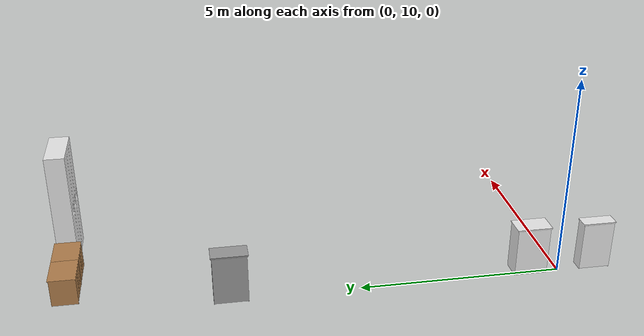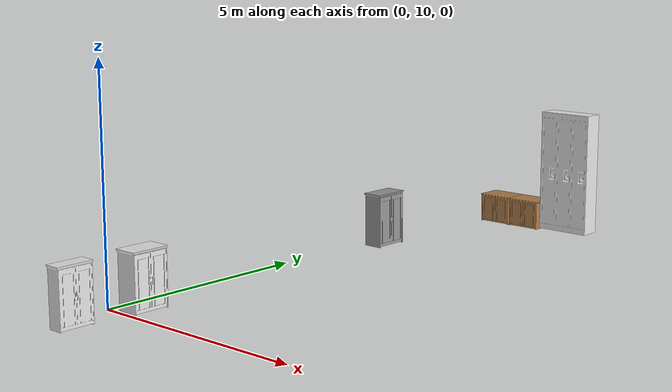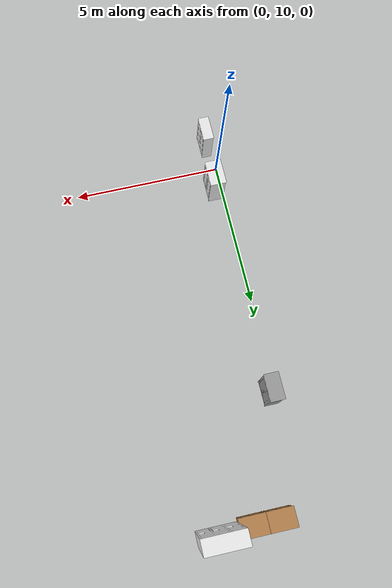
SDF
<?xml version="1.0" ?>
<sdf version="1.5">
  <model name="cupboards">
    <static>true</static>

    <link name="obj2">
      <pose>0.2 9 0 0 0 0</pose>
      <static>true</static>
      <inertial>
          <mass>1.0</mass>
          <inertia>
              <!-- inertias are tricky to compute -->
              <ixx>1</ixx> <!-- for a box: ixx = 0.083 * mass * (y*y + z*z) -->
              <ixy>0</ixy> <!-- for a box: ixy = 0 -->
              <ixz>0</ixz> <!-- for a box: ixz = 0 -->
              <iyy>1</iyy> <!-- for a box: iyy = 0.083 * mass * (x*x + z*z) -->
              <iyz>0</iyz> <!-- for a box: iyz = 0 -->
              <izz>1</izz> <!-- for a box: izz = 0.083 * mass * (x*x + y*y) -->
          </inertia>
      </inertial>
      <collision name="collision">
        <geometry>
          <mesh>
            <uri>model://cupboards/meshes/lemari.stl</uri>
            <scale>0.165 0.171 0.2</scale>
          </mesh>
        </geometry>
      </collision>
      <visual name="visual">
        <geometry>
          <mesh>
            <uri>model://cupboards/meshes/lemari.stl</uri>
            <scale>0.165 0.171 0.2</scale>
          </mesh>
        </geometry>
        <material>
          <script>
              <uri>file://usr/share/gazebo-11/media/materials/scripts/gazebo.material</uri>
              <name>Gazebo/White</name>
          </script>
      </material>
      </visual>
    </link>

    <link name="obj3">
      <pose>0.27 10.681 0 0 0 0</pose>
      <static>true</static>
      <inertial>
          <mass>1.0</mass>
          <inertia>
              <!-- inertias are tricky to compute -->
              <ixx>1</ixx> <!-- for a box: ixx = 0.083 * mass * (y*y + z*z) -->
              <ixy>0</ixy> <!-- for a box: ixy = 0 -->
              <ixz>0</ixz> <!-- for a box: ixz = 0 -->
              <iyy>1</iyy> <!-- for a box: iyy = 0.083 * mass * (x*x + z*z) -->
              <iyz>0</iyz> <!-- for a box: iyz = 0 -->
              <izz>1</izz> <!-- for a box: izz = 0.083 * mass * (x*x + y*y) -->
          </inertia>
      </inertial>
      <collision name="collision">
        <geometry>
          <mesh>
            <uri>model://cupboards/meshes/lemari.stl</uri>
            <scale>0.25 0.18 0.2</scale>
          </mesh>
        </geometry>
      </collision>
      <visual name="visual">
        <geometry>
          <mesh>
            <uri>model://cupboards/meshes/lemari.stl</uri>
            <scale>0.25 0.18 0.2</scale>
          </mesh>
        </geometry>
        <material>
          <script>
              <uri>file://usr/share/gazebo-11/media/materials/scripts/gazebo.material</uri>
              <name>Gazebo/White</name>
          </script>
      </material>
      </visual>
    </link>

    <link name="obj4">
      <pose>0.2225 18.1075 0 0 0 0</pose>
      <static>true</static>
      <inertial>
          <mass>1.0</mass>
          <inertia>
              <!-- inertias are tricky to compute -->
              <ixx>1</ixx> <!-- for a box: ixx = 0.083 * mass * (y*y + z*z) -->
              <ixy>0</ixy> <!-- for a box: ixy = 0 -->
              <ixz>0</ixz> <!-- for a box: ixz = 0 -->
              <iyy>1</iyy> <!-- for a box: iyy = 0.083 * mass * (x*x + z*z) -->
              <iyz>0</iyz> <!-- for a box: iyz = 0 -->
              <izz>1</izz> <!-- for a box: izz = 0.083 * mass * (x*x + y*y) -->
          </inertia>
      </inertial>
      <collision name="collision">
        <geometry>
          <mesh>
            <uri>model://cupboards/meshes/lemari.stl</uri>
            <scale>0.225 0.181125 0.2</scale>
          </mesh>
        </geometry>
      </collision>
      <visual name="visual">
        <geometry>
          <mesh>
            <uri>model://cupboards/meshes/lemari.stl</uri>
            <scale>0.225 0.181125 0.2</scale>
          </mesh>
        </geometry>
        <material>
          <script>
              <uri>file://usr/share/gazebo-11/media/materials/scripts/gazebo.material</uri>
              <name>Gazebo/Grey</name>
          </script>
      </material>
      </visual>
    </link>

    <link name="obj6">
      <pose>0.93 21.985 0 0 0 -1.5707</pose>
      <static>true</static>
      <inertial>
          <mass>1.0</mass>
          <inertia>
              <!-- inertias are tricky to compute -->
              <ixx>1</ixx> <!-- for a box: ixx = 0.083 * mass * (y*y + z*z) -->
              <ixy>0</ixy> <!-- for a box: ixy = 0 -->
              <ixz>0</ixz> <!-- for a box: ixz = 0 -->
              <iyy>1</iyy> <!-- for a box: iyy = 0.083 * mass * (x*x + z*z) -->
              <iyz>0</iyz> <!-- for a box: iyz = 0 -->
              <izz>1</izz> <!-- for a box: izz = 0.083 * mass * (x*x + y*y) -->
          </inertia>
      </inertial>
      <collision name="collision">
        <geometry>
          <mesh>
            <uri>model://cupboards/meshes/lemari.stl</uri>
            <scale>0.3 0.18 0.11</scale>
          </mesh>
        </geometry>
      </collision>
      <visual name="visual">
        <geometry>
          <mesh>
            <uri>model://cupboards/meshes/lemari.stl</uri>
            <scale>0.3 0.18 0.11</scale>
          </mesh>
        </geometry>
        <material>
          <script>
              <uri>file://usr/share/gazebo-11/media/materials/scripts/gazebo.material</uri>
              <name>Gazebo/Wood</name>
          </script>
      </material>
      </visual>
    </link>

    <link name="obj7">
      <pose>1.8 21.985 0 0 0 -1.5707</pose>
      <static>true</static>
      <inertial>
          <mass>1.0</mass>
          <inertia>
              <!-- inertias are tricky to compute -->
              <ixx>1</ixx> <!-- for a box: ixx = 0.083 * mass * (y*y + z*z) -->
              <ixy>0</ixy> <!-- for a box: ixy = 0 -->
              <ixz>0</ixz> <!-- for a box: ixz = 0 -->
              <iyy>1</iyy> <!-- for a box: iyy = 0.083 * mass * (x*x + z*z) -->
              <iyz>0</iyz> <!-- for a box: iyz = 0 -->
              <izz>1</izz> <!-- for a box: izz = 0.083 * mass * (x*x + y*y) -->
          </inertia>
      </inertial>
      <collision name="collision">
        <geometry>
          <mesh>
            <uri>model://cupboards/meshes/lemari.stl</uri>
            <scale>0.3 0.18 0.11</scale>
          </mesh>
        </geometry>
      </collision>
      <visual name="visual">
        <geometry>
          <mesh>
            <uri>model://cupboards/meshes/lemari.stl</uri>
            <scale>0.3 0.18 0.11</scale>
          </mesh>
        </geometry>
        <material>
          <script>
              <uri>file://usr/share/gazebo-11/media/materials/scripts/gazebo.material</uri>
              <name>Gazebo/Wood</name>
          </script>
      </material>
      </visual>
    </link>

    <link name="obj5">
      <pose>3.565 21.7775 0 -1.5707 0 0</pose>
      <static>true</static>
      <inertial>
          <mass>1.0</mass>
          <inertia>
              <!-- inertias are tricky to compute -->
              <ixx>1</ixx> <!-- for a box: ixx = 0.083 * mass * (y*y + z*z) -->
              <ixy>0</ixy> <!-- for a box: ixy = 0 -->
              <ixz>0</ixz> <!-- for a box: ixz = 0 -->
              <iyy>1</iyy> <!-- for a box: iyy = 0.083 * mass * (x*x + z*z) -->
              <iyz>0</iyz> <!-- for a box: iyz = 0 -->
              <izz>1</izz> <!-- for a box: izz = 0.083 * mass * (x*x + y*y) -->
          </inertia>
      </inertial>
      <collision name="collision">
        <geometry>
          <mesh>
            <uri>model://cupboards/meshes/lockers_x3_rusted.stl</uri>
            <scale>0.924812 1 1</scale>
          </mesh>
        </geometry>
      </collision>
      <visual name="visual">
        <geometry>
          <mesh>
            <uri>model://cupboards/meshes/lockers_x3_rusted.stl</uri>
            <scale>0.924812 1 1</scale>
          </mesh>
        </geometry>
        <material>
          <script>
              <uri>file://usr/share/gazebo-11/media/materials/scripts/gazebo.material</uri>
              <name>Gazebo/White</name>
          </script>
      </material>
      </visual>
    </link>

  </model>
</sdf>
